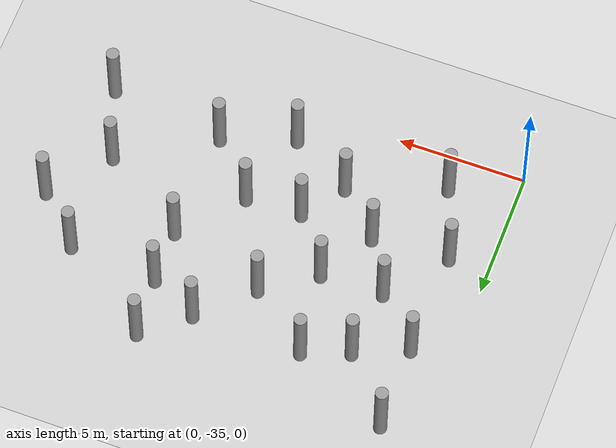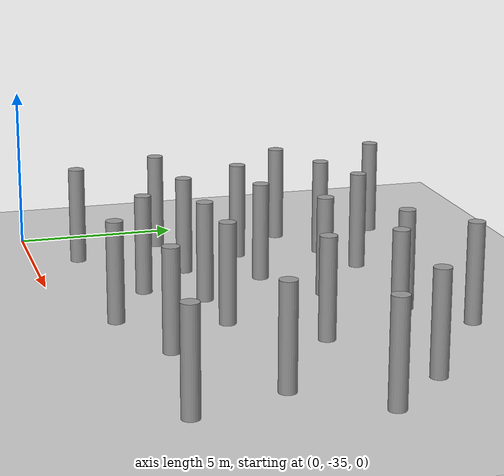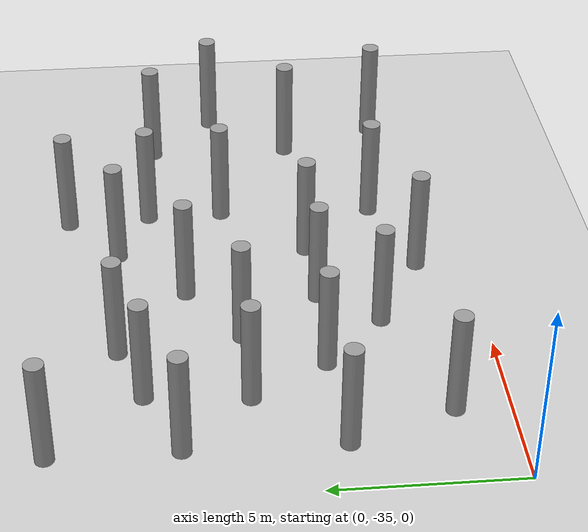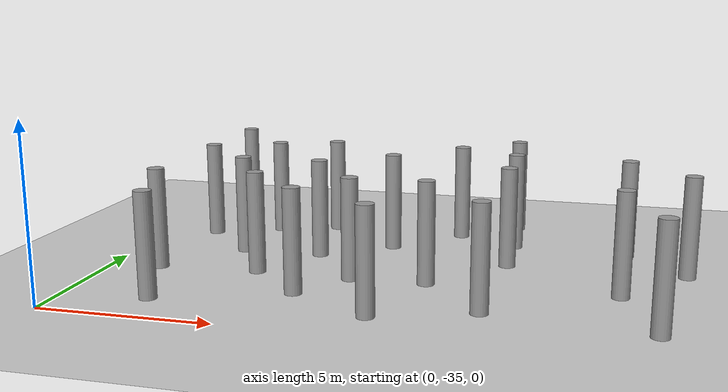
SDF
<sdf version="1.6">
 <world name="default">
  <model name="ground_plane">
   <static>1</static>
   <link name="link">
    <collision name="collision">
     <geometry><plane><normal>0 0 1</normal><size>100 100</size></plane></geometry>
     <surface><friction><ode><mu>100</mu><mu2>50</mu2></ode></friction></surface>
    </collision>
    <visual name="visual">
     <cast_shadows>0</cast_shadows>
     <geometry><plane><normal>0 0 1</normal><size>100 100</size></plane></geometry>
     <material>
      <script><uri>file://media/materials/scripts/gazebo.material</uri><name>Gazebo/Grey</name></script>
     </material>
    </visual>
   </link>
  </model>
  <model name="LjjForest_0">
   <link name="link_0">
    <inertial>
     <mass>1</mass>
     <inertia><ixx>0.145833</ixx><ixy>0</ixy><ixz>0</ixz><iyy>0.145833</iyy><iyz>0</iyz><izz>0.125</izz></inertia>
    </inertial>
    <pose>-5.02717 0.116957 0 0 -0 0</pose>
    <visual name="visual">
     <geometry><cylinder><radius>0.25</radius><length>3</length></cylinder></geometry>
     <material>
      <lighting>1</lighting>
      <script><uri>file://media/materials/scripts/gazebo.material</uri><name>Gazebo/Grey</name></script>
      <shader type="vertex"><normal_map>__default__</normal_map></shader>
      <ambient>0.3 0.3 0.3 1</ambient>
      <diffuse>0.7 0.7 0.7 1</diffuse>
      <specular>0.01 0.01 0.01 1</specular>
      <emissive>0 0 0 1</emissive>
     </material>
    </visual>
    <collision name="collision">
     <geometry><cylinder><radius>0.25</radius><length>3</length></cylinder></geometry>
     <surface>
      <friction>
       <ode><mu>1</mu><mu2>1</mu2><fdir1>0 0 0</fdir1><slip1>0</slip1><slip2>0</slip2></ode>
       <torsional>
        <coefficient>1</coefficient>
        <patch_radius>0</patch_radius>
        <surface_radius>0</surface_radius>
        <use_patch_radius>1</use_patch_radius>
        <ode><slip>0</slip></ode>
       </torsional>
      </friction>
      <bounce><restitution_coefficient>0</restitution_coefficient><threshold>1e+06</threshold></bounce>
      <contact>
       <collide_without_contact>0</collide_without_contact>
       <collide_without_contact_bitmask>1</collide_without_contact_bitmask>
       <collide_bitmask>1</collide_bitmask>
       <ode>
        <soft_cfm>0</soft_cfm>
        <soft_erp>0.2</soft_erp>
        <kp>1e+13</kp>
        <kd>1</kd>
        <max_vel>0.01</max_vel>
        <min_depth>0</min_depth>
       </ode>
       <bullet>
        <split_impulse>1</split_impulse>
        <split_impulse_penetration_threshold>-0.01</split_impulse_penetration_threshold>
        <soft_cfm>0</soft_cfm>
        <soft_erp>0.2</soft_erp>
        <kp>1e+13</kp>
        <kd>1</kd>
       </bullet>
      </contact>
     </surface>
    </collision>
   </link>
   <link name="link_0_clone_1">
    <inertial>
     <mass>1</mass>
     <inertia><ixx>0.145833</ixx><ixy>0</ixy><ixz>0</ixz><iyy>0.145833</iyy><iyz>0</iyz><izz>0.125</izz></inertia>
    </inertial>
    <pose>-1.2394 -1.64814 0 0 -0 0</pose>
    <visual name="visual">
     <geometry><cylinder><radius>0.25</radius><length>3</length></cylinder></geometry>
     <material>
      <lighting>1</lighting>
      <script><uri>file://media/materials/scripts/gazebo.material</uri><name>Gazebo/Grey</name></script>
      <shader type="vertex"><normal_map>__default__</normal_map></shader>
      <ambient>0.3 0.3 0.3 1</ambient>
      <diffuse>0.7 0.7 0.7 1</diffuse>
      <specular>0.01 0.01 0.01 1</specular>
      <emissive>0 0 0 1</emissive>
     </material>
    </visual>
    <collision name="collision">
     <geometry><cylinder><radius>0.25</radius><length>3</length></cylinder></geometry>
     <surface>
      <friction>
       <ode><mu>1</mu><mu2>1</mu2><fdir1>0 0 0</fdir1><slip1>0</slip1><slip2>0</slip2></ode>
       <torsional>
        <coefficient>1</coefficient>
        <patch_radius>0</patch_radius>
        <surface_radius>0</surface_radius>
        <use_patch_radius>1</use_patch_radius>
        <ode><slip>0</slip></ode>
       </torsional>
      </friction>
      <bounce><restitution_coefficient>0</restitution_coefficient><threshold>1e+06</threshold></bounce>
      <contact>
       <collide_without_contact>0</collide_without_contact>
       <collide_without_contact_bitmask>1</collide_without_contact_bitmask>
       <collide_bitmask>1</collide_bitmask>
       <ode>
        <soft_cfm>0</soft_cfm>
        <soft_erp>0.2</soft_erp>
        <kp>1e+13</kp>
        <kd>1</kd>
        <max_vel>0.01</max_vel>
        <min_depth>0</min_depth>
       </ode>
       <bullet>
        <split_impulse>1</split_impulse>
        <split_impulse_penetration_threshold>-0.01</split_impulse_penetration_threshold>
        <soft_cfm>0</soft_cfm>
        <soft_erp>0.2</soft_erp>
        <kp>1e+13</kp>
        <kd>1</kd>
       </bullet>
      </contact>
     </surface>
    </collision>
   </link>
   <link name="link_0_clone_10">
    <inertial>
     <mass>1</mass>
     <inertia><ixx>0.145833</ixx><ixy>0</ixy><ixz>0</ixz><iyy>0.145833</iyy><iyz>0</iyz><izz>0.125</izz></inertia>
    </inertial>
    <pose>4.92442 -4.7051 0 0 -0 0</pose>
    <visual name="visual">
     <geometry><cylinder><radius>0.25</radius><length>3</length></cylinder></geometry>
     <material>
      <lighting>1</lighting>
      <script><uri>file://media/materials/scripts/gazebo.material</uri><name>Gazebo/Grey</name></script>
      <shader type="vertex"><normal_map>__default__</normal_map></shader>
      <ambient>0.3 0.3 0.3 1</ambient>
      <diffuse>0.7 0.7 0.7 1</diffuse>
      <specular>0.01 0.01 0.01 1</specular>
      <emissive>0 0 0 1</emissive>
     </material>
    </visual>
    <collision name="collision">
     <geometry><cylinder><radius>0.25</radius><length>3</length></cylinder></geometry>
     <surface>
      <friction>
       <ode><mu>1</mu><mu2>1</mu2><fdir1>0 0 0</fdir1><slip1>0</slip1><slip2>0</slip2></ode>
       <torsional>
        <coefficient>1</coefficient>
        <patch_radius>0</patch_radius>
        <surface_radius>0</surface_radius>
        <use_patch_radius>1</use_patch_radius>
        <ode><slip>0</slip></ode>
       </torsional>
      </friction>
      <bounce><restitution_coefficient>0</restitution_coefficient><threshold>1e+06</threshold></bounce>
      <contact>
       <collide_without_contact>0</collide_without_contact>
       <collide_without_contact_bitmask>1</collide_without_contact_bitmask>
       <collide_bitmask>1</collide_bitmask>
       <ode>
        <soft_cfm>0</soft_cfm>
        <soft_erp>0.2</soft_erp>
        <kp>1e+13</kp>
        <kd>1</kd>
        <max_vel>0.01</max_vel>
        <min_depth>0</min_depth>
       </ode>
       <bullet>
        <split_impulse>1</split_impulse>
        <split_impulse_penetration_threshold>-0.01</split_impulse_penetration_threshold>
        <soft_cfm>0</soft_cfm>
        <soft_erp>0.2</soft_erp>
        <kp>1e+13</kp>
        <kd>1</kd>
       </bullet>
      </contact>
     </surface>
    </collision>
   </link>
   <link name="link_0_clone_11">
    <inertial>
     <mass>1</mass>
     <inertia><ixx>0.145833</ixx><ixy>0</ixy><ixz>0</ixz><iyy>0.145833</iyy><iyz>0</iyz><izz>0.125</izz></inertia>
    </inertial>
    <pose>2.92414 -7.00263 0 0 -0 0</pose>
    <visual name="visual">
     <geometry><cylinder><radius>0.25</radius><length>3</length></cylinder></geometry>
     <material>
      <lighting>1</lighting>
      <script><uri>file://media/materials/scripts/gazebo.material</uri><name>Gazebo/Grey</name></script>
      <shader type="vertex"><normal_map>__default__</normal_map></shader>
      <ambient>0.3 0.3 0.3 1</ambient>
      <diffuse>0.7 0.7 0.7 1</diffuse>
      <specular>0.01 0.01 0.01 1</specular>
      <emissive>0 0 0 1</emissive>
     </material>
    </visual>
    <collision name="collision">
     <geometry><cylinder><radius>0.25</radius><length>3</length></cylinder></geometry>
     <surface>
      <friction>
       <ode><mu>1</mu><mu2>1</mu2><fdir1>0 0 0</fdir1><slip1>0</slip1><slip2>0</slip2></ode>
       <torsional>
        <coefficient>1</coefficient>
        <patch_radius>0</patch_radius>
        <surface_radius>0</surface_radius>
        <use_patch_radius>1</use_patch_radius>
        <ode><slip>0</slip></ode>
       </torsional>
      </friction>
      <bounce><restitution_coefficient>0</restitution_coefficient><threshold>1e+06</threshold></bounce>
      <contact>
       <collide_without_contact>0</collide_without_contact>
       <collide_without_contact_bitmask>1</collide_without_contact_bitmask>
       <collide_bitmask>1</collide_bitmask>
       <ode>
        <soft_cfm>0</soft_cfm>
        <soft_erp>0.2</soft_erp>
        <kp>1e+13</kp>
        <kd>1</kd>
        <max_vel>0.01</max_vel>
        <min_depth>0</min_depth>
       </ode>
       <bullet>
        <split_impulse>1</split_impulse>
        <split_impulse_penetration_threshold>-0.01</split_impulse_penetration_threshold>
        <soft_cfm>0</soft_cfm>
        <soft_erp>0.2</soft_erp>
        <kp>1e+13</kp>
        <kd>1</kd>
       </bullet>
      </contact>
     </surface>
    </collision>
   </link>
   <link name="link_0_clone_12">
    <inertial>
     <mass>1</mass>
     <inertia><ixx>0.145833</ixx><ixy>0</ixy><ixz>0</ixz><iyy>0.145833</iyy><iyz>0</iyz><izz>0.125</izz></inertia>
    </inertial>
    <pose>4.76112 -9.06376 0 0 -0 0</pose>
    <visual name="visual">
     <geometry><cylinder><radius>0.25</radius><length>3</length></cylinder></geometry>
     <material>
      <lighting>1</lighting>
      <script><uri>file://media/materials/scripts/gazebo.material</uri><name>Gazebo/Grey</name></script>
      <shader type="vertex"><normal_map>__default__</normal_map></shader>
      <ambient>0.3 0.3 0.3 1</ambient>
      <diffuse>0.7 0.7 0.7 1</diffuse>
      <specular>0.01 0.01 0.01 1</specular>
      <emissive>0 0 0 1</emissive>
     </material>
    </visual>
    <collision name="collision">
     <geometry><cylinder><radius>0.25</radius><length>3</length></cylinder></geometry>
     <surface>
      <friction>
       <ode><mu>1</mu><mu2>1</mu2><fdir1>0 0 0</fdir1><slip1>0</slip1><slip2>0</slip2></ode>
       <torsional>
        <coefficient>1</coefficient>
        <patch_radius>0</patch_radius>
        <surface_radius>0</surface_radius>
        <use_patch_radius>1</use_patch_radius>
        <ode><slip>0</slip></ode>
       </torsional>
      </friction>
      <bounce><restitution_coefficient>0</restitution_coefficient><threshold>1e+06</threshold></bounce>
      <contact>
       <collide_without_contact>0</collide_without_contact>
       <collide_without_contact_bitmask>1</collide_without_contact_bitmask>
       <collide_bitmask>1</collide_bitmask>
       <ode>
        <soft_cfm>0</soft_cfm>
        <soft_erp>0.2</soft_erp>
        <kp>1e+13</kp>
        <kd>1</kd>
        <max_vel>0.01</max_vel>
        <min_depth>0</min_depth>
       </ode>
       <bullet>
        <split_impulse>1</split_impulse>
        <split_impulse_penetration_threshold>-0.01</split_impulse_penetration_threshold>
        <soft_cfm>0</soft_cfm>
        <soft_erp>0.2</soft_erp>
        <kp>1e+13</kp>
        <kd>1</kd>
       </bullet>
      </contact>
     </surface>
    </collision>
   </link>
   <link name="link_0_clone_13">
    <inertial>
     <mass>1</mass>
     <inertia><ixx>0.145833</ixx><ixy>0</ixy><ixz>0</ixz><iyy>0.145833</iyy><iyz>0</iyz><izz>0.125</izz></inertia>
    </inertial>
    <pose>0.731055 -7.10049 0 0 -0 0</pose>
    <visual name="visual">
     <geometry><cylinder><radius>0.25</radius><length>3</length></cylinder></geometry>
     <material>
      <lighting>1</lighting>
      <script><uri>file://media/materials/scripts/gazebo.material</uri><name>Gazebo/Grey</name></script>
      <shader type="vertex"><normal_map>__default__</normal_map></shader>
      <ambient>0.3 0.3 0.3 1</ambient>
      <diffuse>0.7 0.7 0.7 1</diffuse>
      <specular>0.01 0.01 0.01 1</specular>
      <emissive>0 0 0 1</emissive>
     </material>
    </visual>
    <collision name="collision">
     <geometry><cylinder><radius>0.25</radius><length>3</length></cylinder></geometry>
     <surface>
      <friction>
       <ode><mu>1</mu><mu2>1</mu2><fdir1>0 0 0</fdir1><slip1>0</slip1><slip2>0</slip2></ode>
       <torsional>
        <coefficient>1</coefficient>
        <patch_radius>0</patch_radius>
        <surface_radius>0</surface_radius>
        <use_patch_radius>1</use_patch_radius>
        <ode><slip>0</slip></ode>
       </torsional>
      </friction>
      <bounce><restitution_coefficient>0</restitution_coefficient><threshold>1e+06</threshold></bounce>
      <contact>
       <collide_without_contact>0</collide_without_contact>
       <collide_without_contact_bitmask>1</collide_without_contact_bitmask>
       <collide_bitmask>1</collide_bitmask>
       <ode>
        <soft_cfm>0</soft_cfm>
        <soft_erp>0.2</soft_erp>
        <kp>1e+13</kp>
        <kd>1</kd>
        <max_vel>0.01</max_vel>
        <min_depth>0</min_depth>
       </ode>
       <bullet>
        <split_impulse>1</split_impulse>
        <split_impulse_penetration_threshold>-0.01</split_impulse_penetration_threshold>
        <soft_cfm>0</soft_cfm>
        <soft_erp>0.2</soft_erp>
        <kp>1e+13</kp>
        <kd>1</kd>
       </bullet>
      </contact>
     </surface>
    </collision>
   </link>
   <link name="link_0_clone_14">
    <inertial>
     <mass>1</mass>
     <inertia><ixx>0.145833</ixx><ixy>0</ixy><ixz>0</ixz><iyy>0.145833</iyy><iyz>0</iyz><izz>0.125</izz></inertia>
    </inertial>
    <pose>-0.840028 -4.93267 0 0 -0 0</pose>
    <visual name="visual">
     <geometry><cylinder><radius>0.25</radius><length>3</length></cylinder></geometry>
     <material>
      <lighting>1</lighting>
      <script><uri>file://media/materials/scripts/gazebo.material</uri><name>Gazebo/Grey</name></script>
      <shader type="vertex"><normal_map>__default__</normal_map></shader>
      <ambient>0.3 0.3 0.3 1</ambient>
      <diffuse>0.7 0.7 0.7 1</diffuse>
      <specular>0.01 0.01 0.01 1</specular>
      <emissive>0 0 0 1</emissive>
     </material>
    </visual>
    <collision name="collision">
     <geometry><cylinder><radius>0.25</radius><length>3</length></cylinder></geometry>
     <surface>
      <friction>
       <ode><mu>1</mu><mu2>1</mu2><fdir1>0 0 0</fdir1><slip1>0</slip1><slip2>0</slip2></ode>
       <torsional>
        <coefficient>1</coefficient>
        <patch_radius>0</patch_radius>
        <surface_radius>0</surface_radius>
        <use_patch_radius>1</use_patch_radius>
        <ode><slip>0</slip></ode>
       </torsional>
      </friction>
      <bounce><restitution_coefficient>0</restitution_coefficient><threshold>1e+06</threshold></bounce>
      <contact>
       <collide_without_contact>0</collide_without_contact>
       <collide_without_contact_bitmask>1</collide_without_contact_bitmask>
       <collide_bitmask>1</collide_bitmask>
       <ode>
        <soft_cfm>0</soft_cfm>
        <soft_erp>0.2</soft_erp>
        <kp>1e+13</kp>
        <kd>1</kd>
        <max_vel>0.01</max_vel>
        <min_depth>0</min_depth>
       </ode>
       <bullet>
        <split_impulse>1</split_impulse>
        <split_impulse_penetration_threshold>-0.01</split_impulse_penetration_threshold>
        <soft_cfm>0</soft_cfm>
        <soft_erp>0.2</soft_erp>
        <kp>1e+13</kp>
        <kd>1</kd>
       </bullet>
      </contact>
     </surface>
    </collision>
   </link>
   <link name="link_0_clone_15">
    <inertial>
     <mass>1</mass>
     <inertia><ixx>0.145833</ixx><ixy>0</ixy><ixz>0</ixz><iyy>0.145833</iyy><iyz>0</iyz><izz>0.125</izz></inertia>
    </inertial>
    <pose>-3.03254 -2.29236 0 0 -0 0</pose>
    <visual name="visual">
     <geometry><cylinder><radius>0.25</radius><length>3</length></cylinder></geometry>
     <material>
      <lighting>1</lighting>
      <script><uri>file://media/materials/scripts/gazebo.material</uri><name>Gazebo/Grey</name></script>
      <shader type="vertex"><normal_map>__default__</normal_map></shader>
      <ambient>0.3 0.3 0.3 1</ambient>
      <diffuse>0.7 0.7 0.7 1</diffuse>
      <specular>0.01 0.01 0.01 1</specular>
      <emissive>0 0 0 1</emissive>
     </material>
    </visual>
    <collision name="collision">
     <geometry><cylinder><radius>0.25</radius><length>3</length></cylinder></geometry>
     <surface>
      <friction>
       <ode><mu>1</mu><mu2>1</mu2><fdir1>0 0 0</fdir1><slip1>0</slip1><slip2>0</slip2></ode>
       <torsional>
        <coefficient>1</coefficient>
        <patch_radius>0</patch_radius>
        <surface_radius>0</surface_radius>
        <use_patch_radius>1</use_patch_radius>
        <ode><slip>0</slip></ode>
       </torsional>
      </friction>
      <bounce><restitution_coefficient>0</restitution_coefficient><threshold>1e+06</threshold></bounce>
      <contact>
       <collide_without_contact>0</collide_without_contact>
       <collide_without_contact_bitmask>1</collide_without_contact_bitmask>
       <collide_bitmask>1</collide_bitmask>
       <ode>
        <soft_cfm>0</soft_cfm>
        <soft_erp>0.2</soft_erp>
        <kp>1e+13</kp>
        <kd>1</kd>
        <max_vel>0.01</max_vel>
        <min_depth>0</min_depth>
       </ode>
       <bullet>
        <split_impulse>1</split_impulse>
        <split_impulse_penetration_threshold>-0.01</split_impulse_penetration_threshold>
        <soft_cfm>0</soft_cfm>
        <soft_erp>0.2</soft_erp>
        <kp>1e+13</kp>
        <kd>1</kd>
       </bullet>
      </contact>
     </surface>
    </collision>
   </link>
   <link name="link_0_clone_16">
    <inertial>
     <mass>1</mass>
     <inertia><ixx>0.145833</ixx><ixy>0</ixy><ixz>0</ixz><iyy>0.145833</iyy><iyz>0</iyz><izz>0.125</izz></inertia>
    </inertial>
    <pose>-5.04025 -3.1815 0 0 -0 0</pose>
    <visual name="visual">
     <geometry><cylinder><radius>0.25</radius><length>3</length></cylinder></geometry>
     <material>
      <lighting>1</lighting>
      <script><uri>file://media/materials/scripts/gazebo.material</uri><name>Gazebo/Grey</name></script>
      <shader type="vertex"><normal_map>__default__</normal_map></shader>
      <ambient>0.3 0.3 0.3 1</ambient>
      <diffuse>0.7 0.7 0.7 1</diffuse>
      <specular>0.01 0.01 0.01 1</specular>
      <emissive>0 0 0 1</emissive>
     </material>
    </visual>
    <collision name="collision">
     <geometry><cylinder><radius>0.25</radius><length>3</length></cylinder></geometry>
     <surface>
      <friction>
       <ode><mu>1</mu><mu2>1</mu2><fdir1>0 0 0</fdir1><slip1>0</slip1><slip2>0</slip2></ode>
       <torsional>
        <coefficient>1</coefficient>
        <patch_radius>0</patch_radius>
        <surface_radius>0</surface_radius>
        <use_patch_radius>1</use_patch_radius>
        <ode><slip>0</slip></ode>
       </torsional>
      </friction>
      <bounce><restitution_coefficient>0</restitution_coefficient><threshold>1e+06</threshold></bounce>
      <contact>
       <collide_without_contact>0</collide_without_contact>
       <collide_without_contact_bitmask>1</collide_without_contact_bitmask>
       <collide_bitmask>1</collide_bitmask>
       <ode>
        <soft_cfm>0</soft_cfm>
        <soft_erp>0.2</soft_erp>
        <kp>1e+13</kp>
        <kd>1</kd>
        <max_vel>0.01</max_vel>
        <min_depth>0</min_depth>
       </ode>
       <bullet>
        <split_impulse>1</split_impulse>
        <split_impulse_penetration_threshold>-0.01</split_impulse_penetration_threshold>
        <soft_cfm>0</soft_cfm>
        <soft_erp>0.2</soft_erp>
        <kp>1e+13</kp>
        <kd>1</kd>
       </bullet>
      </contact>
     </surface>
    </collision>
   </link>
   <link name="link_0_clone_17">
    <inertial>
     <mass>1</mass>
     <inertia><ixx>0.145833</ixx><ixy>0</ixy><ixz>0</ixz><iyy>0.145833</iyy><iyz>0</iyz><izz>0.125</izz></inertia>
    </inertial>
    <pose>-3.28823 -4.99733 0 0 -0 0</pose>
    <visual name="visual">
     <geometry><cylinder><radius>0.25</radius><length>3</length></cylinder></geometry>
     <material>
      <lighting>1</lighting>
      <script><uri>file://media/materials/scripts/gazebo.material</uri><name>Gazebo/Grey</name></script>
      <shader type="vertex"><normal_map>__default__</normal_map></shader>
      <ambient>0.3 0.3 0.3 1</ambient>
      <diffuse>0.7 0.7 0.7 1</diffuse>
      <specular>0.01 0.01 0.01 1</specular>
      <emissive>0 0 0 1</emissive>
     </material>
    </visual>
    <collision name="collision">
     <geometry><cylinder><radius>0.25</radius><length>3</length></cylinder></geometry>
     <surface>
      <friction>
       <ode><mu>1</mu><mu2>1</mu2><fdir1>0 0 0</fdir1><slip1>0</slip1><slip2>0</slip2></ode>
       <torsional>
        <coefficient>1</coefficient>
        <patch_radius>0</patch_radius>
        <surface_radius>0</surface_radius>
        <use_patch_radius>1</use_patch_radius>
        <ode><slip>0</slip></ode>
       </torsional>
      </friction>
      <bounce><restitution_coefficient>0</restitution_coefficient><threshold>1e+06</threshold></bounce>
      <contact>
       <collide_without_contact>0</collide_without_contact>
       <collide_without_contact_bitmask>1</collide_without_contact_bitmask>
       <collide_bitmask>1</collide_bitmask>
       <ode>
        <soft_cfm>0</soft_cfm>
        <soft_erp>0.2</soft_erp>
        <kp>1e+13</kp>
        <kd>1</kd>
        <max_vel>0.01</max_vel>
        <min_depth>0</min_depth>
       </ode>
       <bullet>
        <split_impulse>1</split_impulse>
        <split_impulse_penetration_threshold>-0.01</split_impulse_penetration_threshold>
        <soft_cfm>0</soft_cfm>
        <soft_erp>0.2</soft_erp>
        <kp>1e+13</kp>
        <kd>1</kd>
       </bullet>
      </contact>
     </surface>
    </collision>
   </link>
   <link name="link_0_clone_18">
    <inertial>
     <mass>1</mass>
     <inertia><ixx>0.145833</ixx><ixy>0</ixy><ixz>0</ixz><iyy>0.145833</iyy><iyz>0</iyz><izz>0.125</izz></inertia>
    </inertial>
    <pose>-2.11118 -7.04502 0 0 -0 0</pose>
    <visual name="visual">
     <geometry><cylinder><radius>0.25</radius><length>3</length></cylinder></geometry>
     <material>
      <lighting>1</lighting>
      <script><uri>file://media/materials/scripts/gazebo.material</uri><name>Gazebo/Grey</name></script>
      <shader type="vertex"><normal_map>__default__</normal_map></shader>
      <ambient>0.3 0.3 0.3 1</ambient>
      <diffuse>0.7 0.7 0.7 1</diffuse>
      <specular>0.01 0.01 0.01 1</specular>
      <emissive>0 0 0 1</emissive>
     </material>
    </visual>
    <collision name="collision">
     <geometry><cylinder><radius>0.25</radius><length>3</length></cylinder></geometry>
     <surface>
      <friction>
       <ode><mu>1</mu><mu2>1</mu2><fdir1>0 0 0</fdir1><slip1>0</slip1><slip2>0</slip2></ode>
       <torsional>
        <coefficient>1</coefficient>
        <patch_radius>0</patch_radius>
        <surface_radius>0</surface_radius>
        <use_patch_radius>1</use_patch_radius>
        <ode><slip>0</slip></ode>
       </torsional>
      </friction>
      <bounce><restitution_coefficient>0</restitution_coefficient><threshold>1e+06</threshold></bounce>
      <contact>
       <collide_without_contact>0</collide_without_contact>
       <collide_without_contact_bitmask>1</collide_without_contact_bitmask>
       <collide_bitmask>1</collide_bitmask>
       <ode>
        <soft_cfm>0</soft_cfm>
        <soft_erp>0.2</soft_erp>
        <kp>1e+13</kp>
        <kd>1</kd>
        <max_vel>0.01</max_vel>
        <min_depth>0</min_depth>
       </ode>
       <bullet>
        <split_impulse>1</split_impulse>
        <split_impulse_penetration_threshold>-0.01</split_impulse_penetration_threshold>
        <soft_cfm>0</soft_cfm>
        <soft_erp>0.2</soft_erp>
        <kp>1e+13</kp>
        <kd>1</kd>
       </bullet>
      </contact>
     </surface>
    </collision>
   </link>
   <link name="link_0_clone_19">
    <inertial>
     <mass>1</mass>
     <inertia><ixx>0.145833</ixx><ixy>0</ixy><ixz>0</ixz><iyy>0.145833</iyy><iyz>0</iyz><izz>0.125</izz></inertia>
    </inertial>
    <pose>-0.4391 -8.69513 0 0 -0 0</pose>
    <visual name="visual">
     <geometry><cylinder><radius>0.25</radius><length>3</length></cylinder></geometry>
     <material>
      <lighting>1</lighting>
      <script><uri>file://media/materials/scripts/gazebo.material</uri><name>Gazebo/Grey</name></script>
      <shader type="vertex"><normal_map>__default__</normal_map></shader>
      <ambient>0.3 0.3 0.3 1</ambient>
      <diffuse>0.7 0.7 0.7 1</diffuse>
      <specular>0.01 0.01 0.01 1</specular>
      <emissive>0 0 0 1</emissive>
     </material>
    </visual>
    <collision name="collision">
     <geometry><cylinder><radius>0.25</radius><length>3</length></cylinder></geometry>
     <surface>
      <friction>
       <ode><mu>1</mu><mu2>1</mu2><fdir1>0 0 0</fdir1><slip1>0</slip1><slip2>0</slip2></ode>
       <torsional>
        <coefficient>1</coefficient>
        <patch_radius>0</patch_radius>
        <surface_radius>0</surface_radius>
        <use_patch_radius>1</use_patch_radius>
        <ode><slip>0</slip></ode>
       </torsional>
      </friction>
      <bounce><restitution_coefficient>0</restitution_coefficient><threshold>1e+06</threshold></bounce>
      <contact>
       <collide_without_contact>0</collide_without_contact>
       <collide_without_contact_bitmask>1</collide_without_contact_bitmask>
       <collide_bitmask>1</collide_bitmask>
       <ode>
        <soft_cfm>0</soft_cfm>
        <soft_erp>0.2</soft_erp>
        <kp>1e+13</kp>
        <kd>1</kd>
        <max_vel>0.01</max_vel>
        <min_depth>0</min_depth>
       </ode>
       <bullet>
        <split_impulse>1</split_impulse>
        <split_impulse_penetration_threshold>-0.01</split_impulse_penetration_threshold>
        <soft_cfm>0</soft_cfm>
        <soft_erp>0.2</soft_erp>
        <kp>1e+13</kp>
        <kd>1</kd>
       </bullet>
      </contact>
     </surface>
    </collision>
   </link>
   <link name="link_0_clone_20">
    <inertial>
     <mass>1</mass>
     <inertia><ixx>0.145833</ixx><ixy>0</ixy><ixz>0</ixz><iyy>0.145833</iyy><iyz>0</iyz><izz>0.125</izz></inertia>
    </inertial>
    <pose>1.97365 -10.0303 0 0 -0 0</pose>
    <visual name="visual">
     <geometry><cylinder><radius>0.25</radius><length>3</length></cylinder></geometry>
     <material>
      <lighting>1</lighting>
      <script><uri>file://media/materials/scripts/gazebo.material</uri><name>Gazebo/Grey</name></script>
      <shader type="vertex"><normal_map>__default__</normal_map></shader>
      <ambient>0.3 0.3 0.3 1</ambient>
      <diffuse>0.7 0.7 0.7 1</diffuse>
      <specular>0.01 0.01 0.01 1</specular>
      <emissive>0 0 0 1</emissive>
     </material>
    </visual>
    <collision name="collision">
     <geometry><cylinder><radius>0.25</radius><length>3</length></cylinder></geometry>
     <surface>
      <friction>
       <ode><mu>1</mu><mu2>1</mu2><fdir1>0 0 0</fdir1><slip1>0</slip1><slip2>0</slip2></ode>
       <torsional>
        <coefficient>1</coefficient>
        <patch_radius>0</patch_radius>
        <surface_radius>0</surface_radius>
        <use_patch_radius>1</use_patch_radius>
        <ode><slip>0</slip></ode>
       </torsional>
      </friction>
      <bounce><restitution_coefficient>0</restitution_coefficient><threshold>1e+06</threshold></bounce>
      <contact>
       <collide_without_contact>0</collide_without_contact>
       <collide_without_contact_bitmask>1</collide_without_contact_bitmask>
       <collide_bitmask>1</collide_bitmask>
       <ode>
        <soft_cfm>0</soft_cfm>
        <soft_erp>0.2</soft_erp>
        <kp>1e+13</kp>
        <kd>1</kd>
        <max_vel>0.01</max_vel>
        <min_depth>0</min_depth>
       </ode>
       <bullet>
        <split_impulse>1</split_impulse>
        <split_impulse_penetration_threshold>-0.01</split_impulse_penetration_threshold>
        <soft_cfm>0</soft_cfm>
        <soft_erp>0.2</soft_erp>
        <kp>1e+13</kp>
        <kd>1</kd>
       </bullet>
      </contact>
     </surface>
    </collision>
   </link>
   <link name="link_0_clone_21">
    <inertial>
     <mass>1</mass>
     <inertia><ixx>0.145833</ixx><ixy>0</ixy><ixz>0</ixz><iyy>0.145833</iyy><iyz>0</iyz><izz>0.125</izz></inertia>
    </inertial>
    <pose>-4.11405 -10.0375 0 0 -0 0</pose>
    <visual name="visual">
     <geometry><cylinder><radius>0.25</radius><length>3</length></cylinder></geometry>
     <material>
      <lighting>1</lighting>
      <script><uri>file://media/materials/scripts/gazebo.material</uri><name>Gazebo/Grey</name></script>
      <shader type="vertex"><normal_map>__default__</normal_map></shader>
      <ambient>0.3 0.3 0.3 1</ambient>
      <diffuse>0.7 0.7 0.7 1</diffuse>
      <specular>0.01 0.01 0.01 1</specular>
      <emissive>0 0 0 1</emissive>
     </material>
    </visual>
    <collision name="collision">
     <geometry><cylinder><radius>0.25</radius><length>3</length></cylinder></geometry>
     <surface>
      <friction>
       <ode><mu>1</mu><mu2>1</mu2><fdir1>0 0 0</fdir1><slip1>0</slip1><slip2>0</slip2></ode>
       <torsional>
        <coefficient>1</coefficient>
        <patch_radius>0</patch_radius>
        <surface_radius>0</surface_radius>
        <use_patch_radius>1</use_patch_radius>
        <ode><slip>0</slip></ode>
       </torsional>
      </friction>
      <bounce><restitution_coefficient>0</restitution_coefficient><threshold>1e+06</threshold></bounce>
      <contact>
       <collide_without_contact>0</collide_without_contact>
       <collide_without_contact_bitmask>1</collide_without_contact_bitmask>
       <collide_bitmask>1</collide_bitmask>
       <ode>
        <soft_cfm>0</soft_cfm>
        <soft_erp>0.2</soft_erp>
        <kp>1e+13</kp>
        <kd>1</kd>
        <max_vel>0.01</max_vel>
        <min_depth>0</min_depth>
       </ode>
       <bullet>
        <split_impulse>1</split_impulse>
        <split_impulse_penetration_threshold>-0.01</split_impulse_penetration_threshold>
        <soft_cfm>0</soft_cfm>
        <soft_erp>0.2</soft_erp>
        <kp>1e+13</kp>
        <kd>1</kd>
       </bullet>
      </contact>
     </surface>
    </collision>
   </link>
   <link name="link_0_clone_22">
    <inertial>
     <mass>1</mass>
     <inertia><ixx>0.145833</ixx><ixy>0</ixy><ixz>0</ixz><iyy>0.145833</iyy><iyz>0</iyz><izz>0.125</izz></inertia>
    </inertial>
    <pose>-5.1094 -7.26741 0 0 -0 0</pose>
    <visual name="visual">
     <geometry><cylinder><radius>0.25</radius><length>3</length></cylinder></geometry>
     <material>
      <lighting>1</lighting>
      <script><uri>file://media/materials/scripts/gazebo.material</uri><name>Gazebo/Grey</name></script>
      <shader type="vertex"><normal_map>__default__</normal_map></shader>
      <ambient>0.3 0.3 0.3 1</ambient>
      <diffuse>0.7 0.7 0.7 1</diffuse>
      <specular>0.01 0.01 0.01 1</specular>
      <emissive>0 0 0 1</emissive>
     </material>
    </visual>
    <collision name="collision">
     <geometry><cylinder><radius>0.25</radius><length>3</length></cylinder></geometry>
     <surface>
      <friction>
       <ode><mu>1</mu><mu2>1</mu2><fdir1>0 0 0</fdir1><slip1>0</slip1><slip2>0</slip2></ode>
       <torsional>
        <coefficient>1</coefficient>
        <patch_radius>0</patch_radius>
        <surface_radius>0</surface_radius>
        <use_patch_radius>1</use_patch_radius>
        <ode><slip>0</slip></ode>
       </torsional>
      </friction>
      <bounce><restitution_coefficient>0</restitution_coefficient><threshold>1e+06</threshold></bounce>
      <contact>
       <collide_without_contact>0</collide_without_contact>
       <collide_without_contact_bitmask>1</collide_without_contact_bitmask>
       <collide_bitmask>1</collide_bitmask>
       <ode>
        <soft_cfm>0</soft_cfm>
        <soft_erp>0.2</soft_erp>
        <kp>1e+13</kp>
        <kd>1</kd>
        <max_vel>0.01</max_vel>
        <min_depth>0</min_depth>
       </ode>
       <bullet>
        <split_impulse>1</split_impulse>
        <split_impulse_penetration_threshold>-0.01</split_impulse_penetration_threshold>
        <soft_cfm>0</soft_cfm>
        <soft_erp>0.2</soft_erp>
        <kp>1e+13</kp>
        <kd>1</kd>
       </bullet>
      </contact>
     </surface>
    </collision>
   </link>
   <link name="link_0_clone_32">
    <inertial>
     <mass>1</mass>
     <inertia><ixx>0.145833</ixx><ixy>0</ixy><ixz>0</ixz><iyy>0.145833</iyy><iyz>0</iyz><izz>0.125</izz></inertia>
    </inertial>
    <pose>3.04344 -1.68403 0 0 -0 0</pose>
    <visual name="visual">
     <geometry><cylinder><radius>0.25</radius><length>3</length></cylinder></geometry>
     <material>
      <lighting>1</lighting>
      <script><uri>file://media/materials/scripts/gazebo.material</uri><name>Gazebo/Grey</name></script>
      <shader type="vertex"><normal_map>__default__</normal_map></shader>
      <ambient>0.3 0.3 0.3 1</ambient>
      <diffuse>0.7 0.7 0.7 1</diffuse>
      <specular>0.01 0.01 0.01 1</specular>
      <emissive>0 0 0 1</emissive>
     </material>
    </visual>
    <collision name="collision">
     <geometry><cylinder><radius>0.25</radius><length>3</length></cylinder></geometry>
     <surface>
      <friction>
       <ode><mu>1</mu><mu2>1</mu2><fdir1>0 0 0</fdir1><slip1>0</slip1><slip2>0</slip2></ode>
       <torsional>
        <coefficient>1</coefficient>
        <patch_radius>0</patch_radius>
        <surface_radius>0</surface_radius>
        <use_patch_radius>1</use_patch_radius>
        <ode><slip>0</slip></ode>
       </torsional>
      </friction>
      <bounce><restitution_coefficient>0</restitution_coefficient><threshold>1e+06</threshold></bounce>
      <contact>
       <collide_without_contact>0</collide_without_contact>
       <collide_without_contact_bitmask>1</collide_without_contact_bitmask>
       <collide_bitmask>1</collide_bitmask>
       <ode>
        <soft_cfm>0</soft_cfm>
        <soft_erp>0.2</soft_erp>
        <kp>1e+13</kp>
        <kd>1</kd>
        <max_vel>0.01</max_vel>
        <min_depth>0</min_depth>
       </ode>
       <bullet>
        <split_impulse>1</split_impulse>
        <split_impulse_penetration_threshold>-0.01</split_impulse_penetration_threshold>
        <soft_cfm>0</soft_cfm>
        <soft_erp>0.2</soft_erp>
        <kp>1e+13</kp>
        <kd>1</kd>
       </bullet>
      </contact>
     </surface>
    </collision>
   </link>
   <link name="link_0_clone_7">
    <inertial>
     <mass>1</mass>
     <inertia><ixx>0.145833</ixx><ixy>0</ixy><ixz>0</ixz><iyy>0.145833</iyy><iyz>0</iyz><izz>0.125</izz></inertia>
    </inertial>
    <pose>1.14853 -3.52752 0 0 -0 0</pose>
    <visual name="visual">
     <geometry><cylinder><radius>0.25</radius><length>3</length></cylinder></geometry>
     <material>
      <lighting>1</lighting>
      <script><uri>file://media/materials/scripts/gazebo.material</uri><name>Gazebo/Grey</name></script>
      <shader type="vertex"><normal_map>__default__</normal_map></shader>
      <ambient>0.3 0.3 0.3 1</ambient>
      <diffuse>0.7 0.7 0.7 1</diffuse>
      <specular>0.01 0.01 0.01 1</specular>
      <emissive>0 0 0 1</emissive>
     </material>
    </visual>
    <collision name="collision">
     <geometry><cylinder><radius>0.25</radius><length>3</length></cylinder></geometry>
     <surface>
      <friction>
       <ode><mu>1</mu><mu2>1</mu2><fdir1>0 0 0</fdir1><slip1>0</slip1><slip2>0</slip2></ode>
       <torsional>
        <coefficient>1</coefficient>
        <patch_radius>0</patch_radius>
        <surface_radius>0</surface_radius>
        <use_patch_radius>1</use_patch_radius>
        <ode><slip>0</slip></ode>
       </torsional>
      </friction>
      <bounce><restitution_coefficient>0</restitution_coefficient><threshold>1e+06</threshold></bounce>
      <contact>
       <collide_without_contact>0</collide_without_contact>
       <collide_without_contact_bitmask>1</collide_without_contact_bitmask>
       <collide_bitmask>1</collide_bitmask>
       <ode>
        <soft_cfm>0</soft_cfm>
        <soft_erp>0.2</soft_erp>
        <kp>1e+13</kp>
        <kd>1</kd>
        <max_vel>0.01</max_vel>
        <min_depth>0</min_depth>
       </ode>
       <bullet>
        <split_impulse>1</split_impulse>
        <split_impulse_penetration_threshold>-0.01</split_impulse_penetration_threshold>
        <soft_cfm>0</soft_cfm>
        <soft_erp>0.2</soft_erp>
        <kp>1e+13</kp>
        <kd>1</kd>
       </bullet>
      </contact>
     </surface>
    </collision>
   </link>
   <link name="link_0_clone_8">
    <inertial>
     <mass>1</mass>
     <inertia><ixx>0.145833</ixx><ixy>0</ixy><ixz>0</ixz><iyy>0.145833</iyy><iyz>0</iyz><izz>0.125</izz></inertia>
    </inertial>
    <pose>4.72743 -0.273206 0 0 -0 0</pose>
    <visual name="visual">
     <geometry><cylinder><radius>0.25</radius><length>3</length></cylinder></geometry>
     <material>
      <lighting>1</lighting>
      <script><uri>file://media/materials/scripts/gazebo.material</uri><name>Gazebo/Grey</name></script>
      <shader type="vertex"><normal_map>__default__</normal_map></shader>
      <ambient>0.3 0.3 0.3 1</ambient>
      <diffuse>0.7 0.7 0.7 1</diffuse>
      <specular>0.01 0.01 0.01 1</specular>
      <emissive>0 0 0 1</emissive>
     </material>
    </visual>
    <collision name="collision">
     <geometry><cylinder><radius>0.25</radius><length>3</length></cylinder></geometry>
     <surface>
      <friction>
       <ode><mu>1</mu><mu2>1</mu2><fdir1>0 0 0</fdir1><slip1>0</slip1><slip2>0</slip2></ode>
       <torsional>
        <coefficient>1</coefficient>
        <patch_radius>0</patch_radius>
        <surface_radius>0</surface_radius>
        <use_patch_radius>1</use_patch_radius>
        <ode><slip>0</slip></ode>
       </torsional>
      </friction>
      <bounce><restitution_coefficient>0</restitution_coefficient><threshold>1e+06</threshold></bounce>
      <contact>
       <collide_without_contact>0</collide_without_contact>
       <collide_without_contact_bitmask>1</collide_without_contact_bitmask>
       <collide_bitmask>1</collide_bitmask>
       <ode>
        <soft_cfm>0</soft_cfm>
        <soft_erp>0.2</soft_erp>
        <kp>1e+13</kp>
        <kd>1</kd>
        <max_vel>0.01</max_vel>
        <min_depth>0</min_depth>
       </ode>
       <bullet>
        <split_impulse>1</split_impulse>
        <split_impulse_penetration_threshold>-0.01</split_impulse_penetration_threshold>
        <soft_cfm>0</soft_cfm>
        <soft_erp>0.2</soft_erp>
        <kp>1e+13</kp>
        <kd>1</kd>
       </bullet>
      </contact>
     </surface>
    </collision>
   </link>
   <link name="link_0_clone_9">
    <inertial>
     <mass>1</mass>
     <inertia><ixx>0.145833</ixx><ixy>0</ixy><ixz>0</ixz><iyy>0.145833</iyy><iyz>0</iyz><izz>0.125</izz></inertia>
    </inertial>
    <pose>4.89769 -2.58143 0 0 -0 0</pose>
    <visual name="visual">
     <geometry><cylinder><radius>0.25</radius><length>3</length></cylinder></geometry>
     <material>
      <lighting>1</lighting>
      <script><uri>file://media/materials/scripts/gazebo.material</uri><name>Gazebo/Grey</name></script>
      <shader type="vertex"><normal_map>__default__</normal_map></shader>
      <ambient>0.3 0.3 0.3 1</ambient>
      <diffuse>0.7 0.7 0.7 1</diffuse>
      <specular>0.01 0.01 0.01 1</specular>
      <emissive>0 0 0 1</emissive>
     </material>
    </visual>
    <collision name="collision">
     <geometry><cylinder><radius>0.25</radius><length>3</length></cylinder></geometry>
     <surface>
      <friction>
       <ode><mu>1</mu><mu2>1</mu2><fdir1>0 0 0</fdir1><slip1>0</slip1><slip2>0</slip2></ode>
       <torsional>
        <coefficient>1</coefficient>
        <patch_radius>0</patch_radius>
        <surface_radius>0</surface_radius>
        <use_patch_radius>1</use_patch_radius>
        <ode><slip>0</slip></ode>
       </torsional>
      </friction>
      <bounce><restitution_coefficient>0</restitution_coefficient><threshold>1e+06</threshold></bounce>
      <contact>
       <collide_without_contact>0</collide_without_contact>
       <collide_without_contact_bitmask>1</collide_without_contact_bitmask>
       <collide_bitmask>1</collide_bitmask>
       <ode>
        <soft_cfm>0</soft_cfm>
        <soft_erp>0.2</soft_erp>
        <kp>1e+13</kp>
        <kd>1</kd>
        <max_vel>0.01</max_vel>
        <min_depth>0</min_depth>
       </ode>
       <bullet>
        <split_impulse>1</split_impulse>
        <split_impulse_penetration_threshold>-0.01</split_impulse_penetration_threshold>
        <soft_cfm>0</soft_cfm>
        <soft_erp>0.2</soft_erp>
        <kp>1e+13</kp>
        <kd>1</kd>
       </bullet>
      </contact>
     </surface>
    </collision>
   </link>
   <static>0</static>
   <pose>6.62019 -23.5094 1.5 0 -0 0.002394</pose>
  </model>
  <model name="LjjForest_4">
   <link name="link_0_clone_16">
    <inertial>
     <mass>1</mass>
     <inertia><ixx>0.145833</ixx><ixy>0</ixy><ixz>0</ixz><iyy>0.145833</iyy><iyz>0</iyz><izz>0.125</izz></inertia>
    </inertial>
    <pose>-5.04025 -3.1815 0 0 -0 0</pose>
    <visual name="visual">
     <geometry><cylinder><radius>0.25</radius><length>3</length></cylinder></geometry>
     <material>
      <lighting>1</lighting>
      <script><uri>file://media/materials/scripts/gazebo.material</uri><name>Gazebo/Grey</name></script>
      <shader type="vertex"><normal_map>__default__</normal_map></shader>
      <ambient>0.3 0.3 0.3 1</ambient>
      <diffuse>0.7 0.7 0.7 1</diffuse>
      <specular>0.01 0.01 0.01 1</specular>
      <emissive>0 0 0 1</emissive>
     </material>
    </visual>
    <collision name="collision">
     <geometry><cylinder><radius>0.25</radius><length>3</length></cylinder></geometry>
     <surface>
      <friction>
       <ode><mu>1</mu><mu2>1</mu2><fdir1>0 0 0</fdir1><slip1>0</slip1><slip2>0</slip2></ode>
       <torsional>
        <coefficient>1</coefficient>
        <patch_radius>0</patch_radius>
        <surface_radius>0</surface_radius>
        <use_patch_radius>1</use_patch_radius>
        <ode><slip>0</slip></ode>
       </torsional>
      </friction>
      <bounce><restitution_coefficient>0</restitution_coefficient><threshold>1e+06</threshold></bounce>
      <contact>
       <collide_without_contact>0</collide_without_contact>
       <collide_without_contact_bitmask>1</collide_without_contact_bitmask>
       <collide_bitmask>1</collide_bitmask>
       <ode>
        <soft_cfm>0</soft_cfm>
        <soft_erp>0.2</soft_erp>
        <kp>1e+13</kp>
        <kd>1</kd>
        <max_vel>0.01</max_vel>
        <min_depth>0</min_depth>
       </ode>
       <bullet>
        <split_impulse>1</split_impulse>
        <split_impulse_penetration_threshold>-0.01</split_impulse_penetration_threshold>
        <soft_cfm>0</soft_cfm>
        <soft_erp>0.2</soft_erp>
        <kp>1e+13</kp>
        <kd>1</kd>
       </bullet>
      </contact>
     </surface>
    </collision>
   </link>
   <link name="link_0_clone_17">
    <inertial>
     <mass>1</mass>
     <inertia><ixx>0.145833</ixx><ixy>0</ixy><ixz>0</ixz><iyy>0.145833</iyy><iyz>0</iyz><izz>0.125</izz></inertia>
    </inertial>
    <pose>-3.28823 -4.99733 0 0 -0 0</pose>
    <visual name="visual">
     <geometry><cylinder><radius>0.25</radius><length>3</length></cylinder></geometry>
     <material>
      <lighting>1</lighting>
      <script><uri>file://media/materials/scripts/gazebo.material</uri><name>Gazebo/Grey</name></script>
      <shader type="vertex"><normal_map>__default__</normal_map></shader>
      <ambient>0.3 0.3 0.3 1</ambient>
      <diffuse>0.7 0.7 0.7 1</diffuse>
      <specular>0.01 0.01 0.01 1</specular>
      <emissive>0 0 0 1</emissive>
     </material>
    </visual>
    <collision name="collision">
     <geometry><cylinder><radius>0.25</radius><length>3</length></cylinder></geometry>
     <surface>
      <friction>
       <ode><mu>1</mu><mu2>1</mu2><fdir1>0 0 0</fdir1><slip1>0</slip1><slip2>0</slip2></ode>
       <torsional>
        <coefficient>1</coefficient>
        <patch_radius>0</patch_radius>
        <surface_radius>0</surface_radius>
        <use_patch_radius>1</use_patch_radius>
        <ode><slip>0</slip></ode>
       </torsional>
      </friction>
      <bounce><restitution_coefficient>0</restitution_coefficient><threshold>1e+06</threshold></bounce>
      <contact>
       <collide_without_contact>0</collide_without_contact>
       <collide_without_contact_bitmask>1</collide_without_contact_bitmask>
       <collide_bitmask>1</collide_bitmask>
       <ode>
        <soft_cfm>0</soft_cfm>
        <soft_erp>0.2</soft_erp>
        <kp>1e+13</kp>
        <kd>1</kd>
        <max_vel>0.01</max_vel>
        <min_depth>0</min_depth>
       </ode>
       <bullet>
        <split_impulse>1</split_impulse>
        <split_impulse_penetration_threshold>-0.01</split_impulse_penetration_threshold>
        <soft_cfm>0</soft_cfm>
        <soft_erp>0.2</soft_erp>
        <kp>1e+13</kp>
        <kd>1</kd>
       </bullet>
      </contact>
     </surface>
    </collision>
   </link>
   <link name="link_0_clone_21">
    <inertial>
     <mass>1</mass>
     <inertia><ixx>0.145833</ixx><ixy>0</ixy><ixz>0</ixz><iyy>0.145833</iyy><iyz>0</iyz><izz>0.125</izz></inertia>
    </inertial>
    <pose>-4.11405 -10.0375 0 0 -0 0</pose>
    <visual name="visual">
     <geometry><cylinder><radius>0.25</radius><length>3</length></cylinder></geometry>
     <material>
      <lighting>1</lighting>
      <script><uri>file://media/materials/scripts/gazebo.material</uri><name>Gazebo/Grey</name></script>
      <shader type="vertex"><normal_map>__default__</normal_map></shader>
      <ambient>0.3 0.3 0.3 1</ambient>
      <diffuse>0.7 0.7 0.7 1</diffuse>
      <specular>0.01 0.01 0.01 1</specular>
      <emissive>0 0 0 1</emissive>
     </material>
    </visual>
    <collision name="collision">
     <geometry><cylinder><radius>0.25</radius><length>3</length></cylinder></geometry>
     <surface>
      <friction>
       <ode><mu>1</mu><mu2>1</mu2><fdir1>0 0 0</fdir1><slip1>0</slip1><slip2>0</slip2></ode>
       <torsional>
        <coefficient>1</coefficient>
        <patch_radius>0</patch_radius>
        <surface_radius>0</surface_radius>
        <use_patch_radius>1</use_patch_radius>
        <ode><slip>0</slip></ode>
       </torsional>
      </friction>
      <bounce><restitution_coefficient>0</restitution_coefficient><threshold>1e+06</threshold></bounce>
      <contact>
       <collide_without_contact>0</collide_without_contact>
       <collide_without_contact_bitmask>1</collide_without_contact_bitmask>
       <collide_bitmask>1</collide_bitmask>
       <ode>
        <soft_cfm>0</soft_cfm>
        <soft_erp>0.2</soft_erp>
        <kp>1e+13</kp>
        <kd>1</kd>
        <max_vel>0.01</max_vel>
        <min_depth>0</min_depth>
       </ode>
       <bullet>
        <split_impulse>1</split_impulse>
        <split_impulse_penetration_threshold>-0.01</split_impulse_penetration_threshold>
        <soft_cfm>0</soft_cfm>
        <soft_erp>0.2</soft_erp>
        <kp>1e+13</kp>
        <kd>1</kd>
       </bullet>
      </contact>
     </surface>
    </collision>
   </link>
   <link name="link_0_clone_22">
    <inertial>
     <mass>1</mass>
     <inertia><ixx>0.145833</ixx><ixy>0</ixy><ixz>0</ixz><iyy>0.145833</iyy><iyz>0</iyz><izz>0.125</izz></inertia>
    </inertial>
    <pose>-5.1094 -7.26741 0 0 -0 0</pose>
    <visual name="visual">
     <geometry><cylinder><radius>0.25</radius><length>3</length></cylinder></geometry>
     <material>
      <lighting>1</lighting>
      <script><uri>file://media/materials/scripts/gazebo.material</uri><name>Gazebo/Grey</name></script>
      <shader type="vertex"><normal_map>__default__</normal_map></shader>
      <ambient>0.3 0.3 0.3 1</ambient>
      <diffuse>0.7 0.7 0.7 1</diffuse>
      <specular>0.01 0.01 0.01 1</specular>
      <emissive>0 0 0 1</emissive>
     </material>
    </visual>
    <collision name="collision">
     <geometry><cylinder><radius>0.25</radius><length>3</length></cylinder></geometry>
     <surface>
      <friction>
       <ode><mu>1</mu><mu2>1</mu2><fdir1>0 0 0</fdir1><slip1>0</slip1><slip2>0</slip2></ode>
       <torsional>
        <coefficient>1</coefficient>
        <patch_radius>0</patch_radius>
        <surface_radius>0</surface_radius>
        <use_patch_radius>1</use_patch_radius>
        <ode><slip>0</slip></ode>
       </torsional>
      </friction>
      <bounce><restitution_coefficient>0</restitution_coefficient><threshold>1e+06</threshold></bounce>
      <contact>
       <collide_without_contact>0</collide_without_contact>
       <collide_without_contact_bitmask>1</collide_without_contact_bitmask>
       <collide_bitmask>1</collide_bitmask>
       <ode>
        <soft_cfm>0</soft_cfm>
        <soft_erp>0.2</soft_erp>
        <kp>1e+13</kp>
        <kd>1</kd>
        <max_vel>0.01</max_vel>
        <min_depth>0</min_depth>
       </ode>
       <bullet>
        <split_impulse>1</split_impulse>
        <split_impulse_penetration_threshold>-0.01</split_impulse_penetration_threshold>
        <soft_cfm>0</soft_cfm>
        <soft_erp>0.2</soft_erp>
        <kp>1e+13</kp>
        <kd>1</kd>
       </bullet>
      </contact>
     </surface>
    </collision>
   </link>
   <static>0</static>
   <pose>20.0127 -23.0998 1.49999 0 -0 0.002232</pose>
  </model>
 </world>
</sdf>
